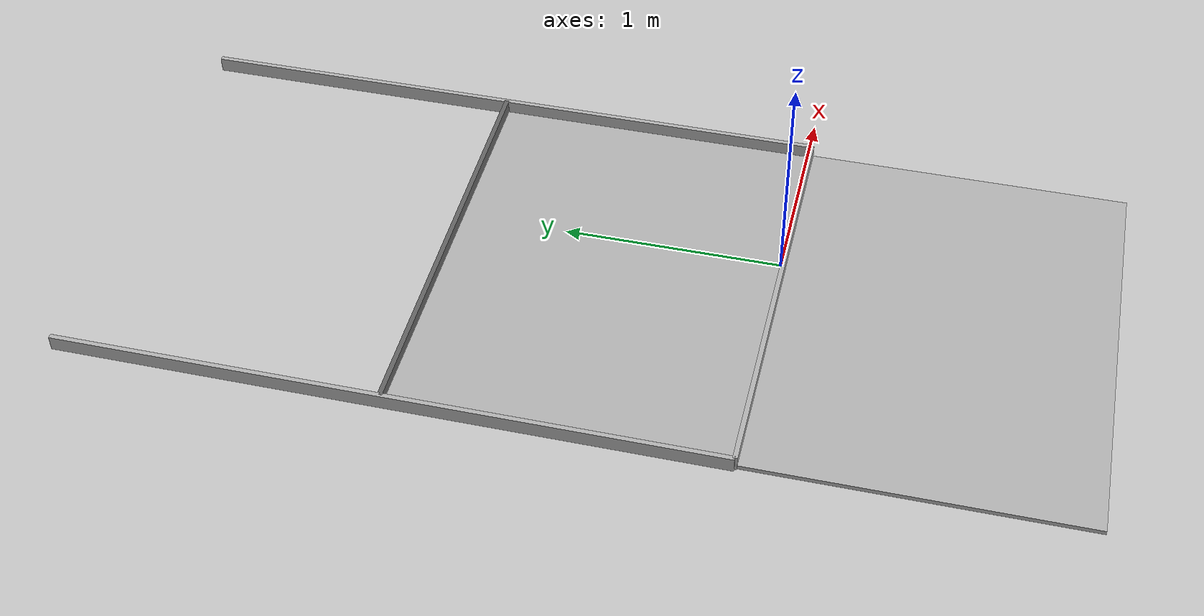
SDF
<sdf version="1.7">
 <world name="default">
  <light name="sun" type="directional">
   <pose>0 0 10 0 -0 0</pose>
   <diffuse>0.8 0.8 0.8 1</diffuse>
   <specular>0.2 0.2 0.2 1</specular>
   <attenuation>
    <range>1000</range>
    <constant>0.9</constant>
    <linear>0.01</linear>
    <quadratic>0.001</quadratic>
   </attenuation>
   <direction>-0.5 0.1 -0.9</direction>
   <spot><inner_angle>0</inner_angle><outer_angle>0</outer_angle><falloff>0</falloff></spot>
  </light>
  <model name="overhead_camera">
   <static>1</static>
   <pose>-0.25 0 3 0 1.57 0</pose>
   <link name="camera_link">
    <sensor name="camera_sensor" type="camera">
     <always_on>1</always_on>
     <update_rate>20</update_rate>
     <camera>
      <horizontal_fov>0.875</horizontal_fov>
      <image><width>640</width><height>480</height><format>R8G8B8</format></image>
      <clip><near>0.1</near><far>100</far></clip>
     </camera>
     <visualize>1</visualize>
     <topic>/overhead_camera/image_raw</topic>
     <plugin name="gazebo_ros_camera" filename="libgazebo_ros_camera.so">
      <always_on>1</always_on>
      <update_rate>30</update_rate>
      <camera_name>overhead_camera</camera_name>
      <image_topic_name>image_raw</image_topic_name>
      <camera_info_topic_name>camera_info</camera_info_topic_name>
      <frame_name>overhead_camera_link</frame_name>
     </plugin>
    </sensor>
   </link>
  </model>
  <plugin name="gazebo_ros_camera" filename="libgazebo_ros_camera.so">
   <always_on>1</always_on>
   <update_rate>30</update_rate>
   <camera_name>overhead_camera</camera_name>
   <image_topic_name>image_raw</image_topic_name>
   <camera_info_topic_name>camera_info</camera_info_topic_name>
   <frame_name>overhead_camera_link</frame_name>
  </plugin>
  <model name="ground_plane">
   <static>1</static>
   <link name="link">
    <collision name="collision">
     <geometry><plane><normal>0 0 1</normal><size>100 100</size></plane></geometry>
     <surface><friction><ode><mu>100</mu><mu2>50</mu2></ode></friction></surface>
    </collision>
    <visual name="visual">
     <cast_shadows>0</cast_shadows>
     <geometry><plane><normal>0 0 1</normal><size>100 100</size></plane></geometry>
     <material>
      <script><uri>file://media/materials/scripts/gazebo.material</uri><name>Gazebo/Grey</name></script>
     </material>
    </visual>
   </link>
  </model>
  <gravity>0 0 -9.8</gravity>
  <magnetic_field>6e-06 2.3e-05 -4.2e-05</magnetic_field>
  <atmosphere type="adiabatic"/>
  <physics type="ode">
   <max_step_size>0.001</max_step_size>
   <real_time_factor>1</real_time_factor>
   <real_time_update_rate>1000</real_time_update_rate>
  </physics>
  <scene><ambient>0.4 0.4 0.4 1</ambient><background>0.7 0.7 0.7 1</background><shadows>1</shadows></scene>
  <spherical_coordinates>
   <surface_model>EARTH_WGS84</surface_model>
   <latitude_deg>0</latitude_deg>
   <longitude_deg>0</longitude_deg>
   <elevation>0</elevation>
   <heading_deg>0</heading_deg>
  </spherical_coordinates>
  <model name="eurobot_cositas">
   <static>1</static>
   <link name="wall_pos_x">
    <pose>0.01 0 0.035 0 -0 0</pose>
    <collision name="col"><geometry><box><size>0.022 2 0.07</size></box></geometry></collision>
    <visual name="vis">
     <geometry><box><size>0.022 2 0.07</size></box></geometry>
     <material><ambient>0.2 0.2 0.2 1</ambient><diffuse>0.4 0.4 0.4 1</diffuse></material>
    </visual>
   </link>
   <link name="wall_neg_x">
    <pose>-1.5 0 0.035 0 -0 0</pose>
    <collision name="col"><geometry><box><size>0.022 2 0.07</size></box></geometry></collision>
    <visual name="vis"><geometry><box><size>0.022 2 0.07</size></box></geometry></visual>
   </link>
   <link name="wall_pos_y">
    <pose>0 1 0.035 0 -0 0</pose>
    <collision name="col"><geometry><box><size>3 0.022 0.07</size></box></geometry></collision>
    <visual name="vis"><geometry><box><size>3 0.022 0.07</size></box></geometry></visual>
   </link>
   <link name="wall_neg_y">
    <pose>0 -1 0.035 0 -0 0</pose>
    <collision name="col"><geometry><box><size>3 0.022 0.07</size></box></geometry></collision>
    <visual name="vis"><geometry><box><size>3 0.022 0.07</size></box></geometry></visual>
   </link>
   <pose>-0.219803 1.48774 0 0 -0 1.56945</pose>
  </model>
  <model name="Marker10_0">
   <static>1</static>
   <link name="link">
    <visual name="visual">
     <geometry><mesh><uri>model://marker10/meshes/Marker10.dae</uri><scale>0.01 1.5 1</scale></mesh></geometry>
    </visual>
   </link>
   <pose>0.780487 -0.001779 -0 0 -1.56424 0</pose>
  </model>
 </world>
</sdf>
